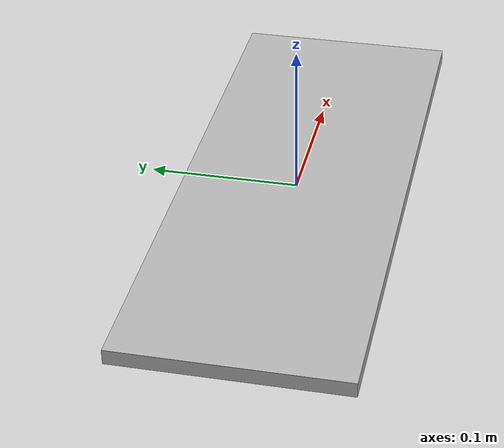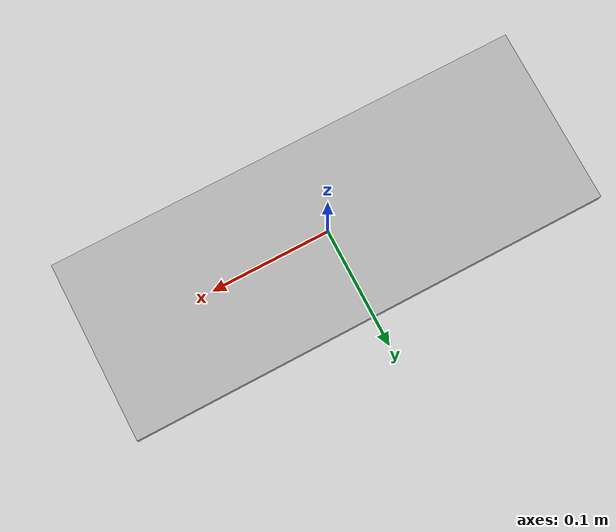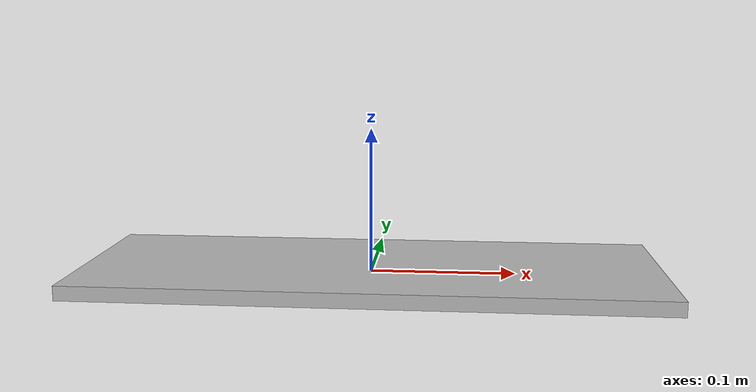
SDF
<?xml version='1.0'?>
<sdf version='1.6'>
  <model name="speed_limit_20_ground">
      <static>true</static>
      <link name='link'>
        <collision name='collision'>
          <geometry>
         <box>
            <size>0.4 0.15 0.01</size>
          </box>
          </geometry>
          <surface>
            <friction>
              <ode>
                <mu>100</mu>
                <mu2>50</mu2>
              </ode>
            </friction>
          </surface>
        </collision>
        <visual name='visual'>
          <cast_shadows>0</cast_shadows>
          <geometry>
         <box>
            <size>0.4 0.15 0.01</size>
          </box>
          </geometry>
          <material>
            <script>
              <uri>model://speed_limit_20_ground/materials/scripts</uri>
              <uri>model://speed_limit_20_ground/materials/textures/</uri>
              <name>speed_limit_20_ground/Image</name>
            </script>
          </material>
        </visual>
      </link>
  </model>
</sdf>
